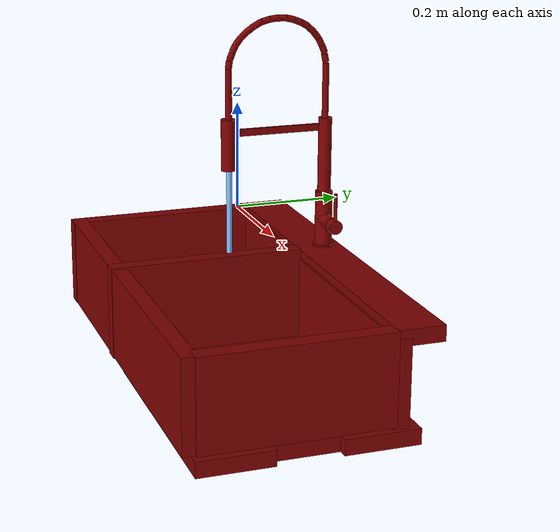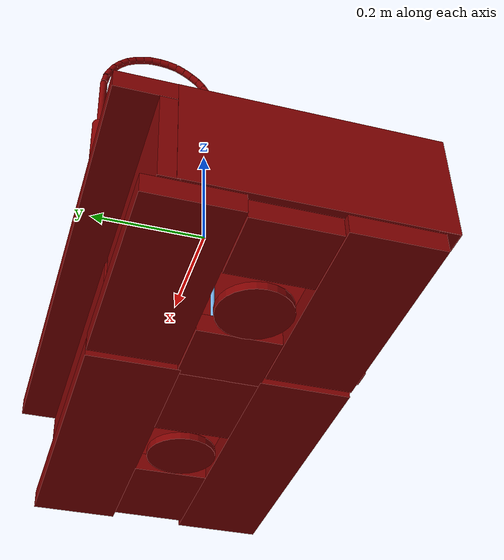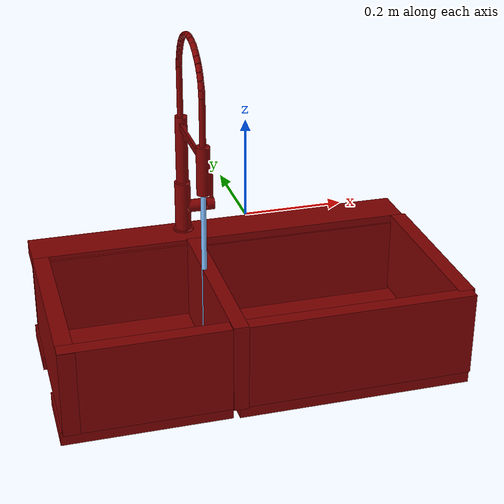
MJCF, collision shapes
<mujoco model="model">
  <compiler angle="radian"/>
  <asset>
    <mesh file="visuals/handle.obj" name="handle_vis"/>
    <mesh file="visuals/Body001.obj" name="Body001_vis"/>
    <mesh file="visuals/Funnel001.obj" name="Funnel001_vis"/>
    <mesh file="visuals/Funnel002.obj" name="Funnel002_vis"/>
    <mesh file="visuals/spout.obj" name="spout_vis"/>
    <texture file="visuals/T_BC001.png" name="Body001_material" type="2d"/>
    <material name="Body001_material" rgba="1 1 1 1.0" texture="Body001_material" shininess="0.5" specular="0.5"/>
    <texture file="visuals/T_BC001.png" name="handle_material" type="2d"/>
    <material name="handle_material" rgba="1 1 1 1.0" texture="handle_material" shininess="0.5" specular="0.3103448502657381"/>
    <texture file="visuals/T_BC001.png" name="Funnel001_material" type="2d"/>
    <material name="Funnel001_material" rgba="1 1 1 1.0" texture="Funnel001_material" shininess="0.5" specular="0.3103448502657381"/>
    <texture file="visuals/T_BC001.png" name="Funnel002_material" type="2d"/>
    <material name="Funnel002_material" rgba="1 1 1 1.0" texture="Funnel002_material" shininess="0.5" specular="0.3103448502657381"/>
    <texture file="visuals/T_BC001.png" name="spout_material" type="2d"/>
    <material name="spout_material" rgba="1 1 1 1.0" texture="spout_material" shininess="0.5" specular="0.3103448502657381"/>
  </asset>
  <default>
    <default class="visual">
      <geom conaffinity="0" contype="0" group="1" type="mesh"/>
    </default>
    <default class="collision">
      <geom group="0" rgba="0.5 0 0 0.5"/>
    </default>
    <default class="spawn">
      <geom group="0" rgba="1 1 1 0.5" contype="0" conaffinity="0"/>
      <site group="0" rgba="1 1 1 0.5"/>
    </default>
    <default class="region">
      <geom group="1" conaffinity="0" contype="0" rgba="0 1 0 0"/>
    </default>
  </default>
  <worldbody>
    <body>
      <body name="object">
        <geom mesh="Body001_vis" type="mesh" solimp="0.998 0.998 0.001" solref="0.001 1" density="100" friction="0.95 0.3 0.1" class="visual" material="Body001_material"/>
        <geom class="collision" type="box" pos="0.173367 -0.140535 -0.321219" size="0.24221104383468628 0.07210440933704376 0.015311747789382935" quat="1.0 0.0 0.0 0.0"/>
        <geom class="collision" type="box" pos="0.396867 -0.028151 -0.210050" size="0.016926951706409454 0.18149104714393616 0.08872916549444199" quat="1.0 0.0 0.0 0.0"/>
        <geom class="collision" type="box" pos="0.171347 -0.218021 -0.210050" size="0.23601697385311127 0.015311755239963531 0.08872832357883453" quat="1.0 0.0 0.0 0.0"/>
        <geom class="collision" type="box" pos="-0.071936 -0.040821 -0.210050" size="0.015311645343899727 0.19369356334209442 0.09160289168357849" quat="1.0 0.0 0.0 0.0"/>
        <geom class="collision" type="box" pos="0.171347 0.164429 -0.226928" size="0.2360171675682068 0.015311741270124912 0.08872826397418976" quat="1.0 0.0 0.0 0.0"/>
        <geom class="collision" type="box" pos="-0.004283 0.197849 -0.136934" size="0.41164645552635193 0.04474449157714844 0.01531176082789898" quat="1.0 0.0 0.0 0.0"/>
        <geom class="collision" type="box" pos="-0.399058 -0.040821 -0.210050" size="0.016874592751264572 0.19369344413280487 0.08872760087251663" quat="1.0 0.0 0.0 0.0"/>
        <geom class="collision" type="box" pos="-0.246804 -0.218021 -0.210050" size="0.16859567165374756 0.015311719849705696 0.08872818201780319" quat="1.0 0.0 0.0 0.0"/>
        <geom class="collision" type="box" pos="-0.246804 0.162768 -0.214449" size="0.16859574615955353 0.0153117123991251 0.08432964980602264" quat="1.0 0.0 0.0 0.0"/>
        <geom class="collision" type="box" pos="-0.250259 -0.140429 -0.321219" size="0.1685260534286499 0.06921228021383286 0.015311681665480137" quat="1.0 0.0 0.0 0.0"/>
        <geom class="collision" type="box" pos="0.173367 0.127459 -0.321219" size="0.24221214652061462 0.07210403680801392 0.015311652794480324" quat="1.0 0.0 0.0 0.0"/>
        <geom class="collision" type="box" pos="0.315015 -0.007133 -0.321219" size="0.08214612305164337 0.07210347801446915 0.015311544761061668" quat="1.0 0.0 0.0 0.0"/>
        <geom class="collision" type="box" pos="0.018756 -0.007133 -0.321219" size="0.0782523974776268 0.07210355252027512 0.015311557799577713" quat="1.0 0.0 0.0 0.0"/>
        <geom class="collision" type="box" pos="-0.250259 0.131365 -0.321219" size="0.1685265600681305 0.06921207904815674 0.015311631374061108" quat="1.0 0.0 0.0 0.0"/>
        <geom class="collision" type="box" pos="-0.355021 -0.004778 -0.321219" size="0.055496376007795334 0.06496187299489975 0.015311609022319317" quat="1.0 0.0 0.0 0.0"/>
        <geom class="collision" type="box" pos="-0.114494 -0.004778 -0.321219" size="0.055496323853731155 0.06496187299489975 0.015311609022319317" quat="1.0 0.0 0.0 0.0"/>
        <geom class="collision" type="cylinder" pos="-0.081795 0.209257 -0.063609" size="0.01719251088798046 0.0542680025100708" quat="1.0 0.0 0.0 0.0"/>
        <geom class="collision" type="cylinder" pos="-0.060030 0.207533 -0.067148" size="0.013796098530292511 0.023086797446012497" quat="0.7071068286895752 1.2101618374060763e-08 0.7071067690849304 -1.2101617485882343e-08"/>
        <geom class="collision" type="cylinder" pos="-0.081795 0.209257 -0.119787" size="0.021898172795772552 0.00178152893204242" quat="1.0 0.0 0.0 0.0"/>
        <body name="handle">
          <joint axis="1.0 0.0 0.0" pos="-0.023366 0.208081 -0.067251" limited="true" name="handle_joint_hinge_0" type="hinge" range="-0.7853981633974483 0.7853981633974483" damping="1" frictionloss="1" armature=".01" stiffness="0.05"/>
          <joint axis="0.0 1.0 0.0" pos="-0.023366 0.208081 -0.067251" limited="true" name="handle_joint_hinge_1" type="hinge" range="0.0 0.17453292519943295" damping="1" frictionloss="1" armature=".01" stiffness="0.05"/>
          <geom mesh="handle_vis" type="mesh" solimp="0.998 0.998 0.001" solref="0.001 1" density="100" friction="0.95 0.3 0.1" class="visual" material="handle_material"/>
          <geom class="collision" type="cylinder" pos="-0.017881 0.208655 -0.026830" size="0.003564587328583002 0.02724577859044075" quat="1.0 0.0 0.0 0.0"/>
          <geom class="collision" type="cylinder" pos="-0.022151 0.208655 -0.067067" size="0.013808298856019974 0.009049287997186184" quat="0.7071068286895752 1.2101618374060763e-08 0.7071067690849304 -1.2101617485882343e-08"/>
        </body>
        <body name="Funnel001">
          <joint axis="0.0 0.0 1.0" pos="0.162421 -0.006078 -0.331210" limited="true" name="Funnel001_joint" range="0.0 0.1" type="slide" damping="1" frictionloss="1" armature=".01" stiffness="0.05"/>
          <geom mesh="Funnel001_vis" type="mesh" solimp="0.998 0.998 0.001" solref="0.001 1" density="100" friction="0.95 0.3 0.1" class="visual" material="Funnel001_material"/>
          <geom class="collision" type="cylinder" pos="0.161871 -0.005547 -0.337562" size="0.0567057766020298 0.006010390818119049" quat="1.0 0.0 0.0 0.0"/>
          <geom class="collision" type="cylinder" pos="0.161871 -0.005547 -0.324901" size="0.00963414553552866 0.00779954856261611" quat="1.0 0.0 0.0 0.0"/>
        </body>
        <body name="Funnel002">
          <joint axis="0.0 0.0 1.0" pos="-0.233084 -0.006078 -0.331210" limited="true" name="Funnel002_joint" range="0.0 0.1" type="slide" damping="1" frictionloss="1" armature=".01" stiffness="0.05"/>
          <geom mesh="Funnel002_vis" type="mesh" solimp="0.998 0.998 0.001" solref="0.001 1" density="100" friction="0.95 0.3 0.1" class="visual" material="Funnel002_material"/>
          <geom class="collision" type="cylinder" pos="-0.234044 -0.005547 -0.337241" size="0.0567057803273201 0.006307606119662523" quat="1.0 0.0 0.0 0.0"/>
          <geom class="collision" type="cylinder" pos="-0.233738 -0.005547 -0.324901" size="0.00963414553552866 0.00779954856261611" quat="1.0 0.0 0.0 0.0"/>
        </body>
        <body name="spout">
          <joint axis="0.0 0.0 1.0" pos="-0.082834 0.208813 0.128989" limited="true" name="spout_joint" range="-0.7853981633974483 0.7853981633974483" type="hinge" damping="1" frictionloss="1" armature=".01" stiffness="0.05"/>
          <site type="cylinder" rgba="0.5 0.75 1 1" size="0.005516553297638893 0.19040846824645996" pos="-0.082938 0.011155 -0.130733" name="water"/>
          <geom mesh="spout_vis" type="mesh" solimp="0.998 0.998 0.001" solref="0.001 1" density="100" friction="0.95 0.3 0.1" class="visual" material="spout_material"/>
          <geom class="collision" type="cylinder" pos="-0.081390 0.209257 0.066237" size="0.01332130841910839 0.07394440472126007" quat="1.0 0.0 0.0 0.0"/>
          <geom class="collision" type="cylinder" pos="-0.082668 0.209257 0.192887" size="0.006440197583287954 0.055047474801540375" quat="1.0 0.0 0.0 0.0"/>
          <geom class="collision" type="cylinder" pos="-0.082769 0.207219 0.258456" size="0.006440198514610529 0.007824218831956387" quat="0.994442343711853 0.09780789911746979 -0.010970431379973888 0.03738629072904587"/>
          <geom class="collision" type="cylinder" pos="-0.082769 0.202950 0.275809" size="0.006440197583287954 0.007824219763278961" quat="0.9805814027786255 0.1922031044960022 -0.014486033469438553 0.036169588565826416"/>
          <geom class="collision" type="cylinder" pos="-0.082769 0.195750 0.290580" size="0.006440199911594391 0.007824218831956387" quat="0.9713069796562195 0.23461611568927765 -0.01604348048567772 0.03550620749592781"/>
          <geom class="collision" type="cylinder" pos="-0.082769 0.186740 0.304243" size="0.006440198048949242 0.007824218831956387" quat="0.9441950917243958 0.327074259519577 -0.019388651475310326 0.03379601240158081"/>
          <geom class="collision" type="cylinder" pos="-0.082769 0.175555 0.316173" size="0.0064401994459331036 0.007824218831956387" quat="0.9140971899032593 0.4036189317703247 -0.022102370858192444 0.03208690136671066"/>
          <geom class="collision" type="cylinder" pos="-0.082769 0.162634 0.325765" size="0.006440198048949242 0.007824218831956387" quat="0.860331118106842 0.5082443356513977 -0.025719990953803062 0.029267169535160065"/>
          <geom class="collision" type="cylinder" pos="-0.082769 0.147914 0.332586" size="0.006440197117626667 0.007824216969311237" quat="0.8240454196929932 0.5651823282241821 -0.027637701481580734 0.02746354043483734"/>
          <geom class="collision" type="cylinder" pos="-0.082769 0.132627 0.337513" size="0.006440197583287954 0.007824218831956387" quat="0.7813286781311035 0.6229024529457092 -0.02953859232366085 0.025407683104276657"/>
          <geom class="collision" type="cylinder" pos="-0.082769 0.116618 0.339583" size="0.006440198514610529 0.007824219763278961" quat="0.7136919498443604 0.6993752717971802 -0.031976960599422455 0.022261176258325577"/>
          <geom class="collision" type="cylinder" pos="-0.082769 0.100539 0.339043" size="0.006440198980271816 0.007824219763278961" quat="0.6678956747055054 0.7432343363761902 -0.033324532210826874 0.020188095048069954"/>
          <geom class="collision" type="cylinder" pos="-0.082769 0.084643 0.336164" size="0.006440198514610529 0.007824220694601536" quat="0.612804114818573 0.789273738861084 -0.034688107669353485 0.01774313487112522"/>
          <geom class="collision" type="cylinder" pos="-0.082769 0.068829 0.330251" size="0.006440197583287954 0.007824218831956387" quat="0.5160938501358032 0.8556454181671143 -0.03652830421924591 0.013556111603975296"/>
          <geom class="collision" type="cylinder" pos="-0.082769 0.041489 0.311738" size="0.006440200377255678 0.007824218831956387" quat="0.4162314236164093 0.9084235429763794 -0.03782482445240021 0.009347004815936089"/>
          <geom class="collision" type="cylinder" pos="-0.082769 0.054387 0.321696" size="0.006440198514610529 0.007824218831956387" quat="0.45055606961250305 0.8918974995613098 -0.03744104504585266 0.010782015509903431"/>
          <geom class="collision" type="cylinder" pos="-0.082769 0.030183 0.299959" size="0.006440197583287954 0.007824216037988663" quat="0.3240131139755249 0.9452499151229858 -0.03856576979160309 0.005546665284782648"/>
          <geom class="collision" type="cylinder" pos="-0.082769 0.021395 0.286506" size="0.006440198048949242 0.007824217900633812" quat="0.23667094111442566 0.9708083271980286 -0.038910411298274994 0.0020149636548012495"/>
          <geom class="collision" type="cylinder" pos="-0.082769 0.015071 0.271398" size="0.006440198048949242 0.007824218831956387" quat="0.1699947863817215 0.9846743941307068 -0.03895731642842293 -0.0006401168648153543"/>
          <geom class="collision" type="cylinder" pos="-0.082769 0.011009 0.255726" size="0.006440198048949242 0.007824218831956387" quat="0.06431341171264648 0.9971688389778137 -0.038668613880872726 -0.004779511131346226"/>
          <geom class="collision" type="cylinder" pos="-0.082668 0.010103 0.192887" size="0.006440197583287954 0.055047474801540375" quat="1.0 0.0 0.0 0.0"/>
          <geom class="collision" type="cylinder" pos="-0.082668 0.009140 0.099459" size="0.013979204930365086 0.05057741701602936" quat="1.0 0.0 0.0 0.0"/>
          <geom class="collision" type="box" pos="-0.084243 0.108478 0.121583" size="0.0031662501860409975 0.08885996788740158 0.0068920147605240345" quat="1.0 0.0 0.0 0.0"/>
        </body>
        <geom class="region" name="reg_main" type="box" pos="0.0 1.0999999999997123e-05 -0.2336995" size="0.413485 0.23816199999999998 0.11138949999999999"/>
        <geom class="region" name="reg_basin_left" type="box" pos="-0.2299635 -0.024986999999999995 -0.2258845" size="0.14323550000000002 0.176303 0.09856550000000001"/>
        <geom class="region" name="reg_basin_right" type="box" pos="0.17044700000000002 -0.024674 -0.22572799999999998" size="0.219538 0.175815 0.09840900000000001"/>
      </body>
    </body>
  </worldbody>
  <actuator>
    <motor name="handle_joint_hinge_0_actuator" joint="handle_joint_hinge_0" gear="10"/>
    <motor name="handle_joint_hinge_1_actuator" joint="handle_joint_hinge_1" gear="10"/>
    <motor name="Funnel001_joint_actuator" joint="Funnel001_joint" gear="10"/>
    <motor name="Funnel002_joint_actuator" joint="Funnel002_joint" gear="10"/>
    <motor name="spout_joint_actuator" joint="spout_joint" gear="10"/>
  </actuator>
</mujoco>
